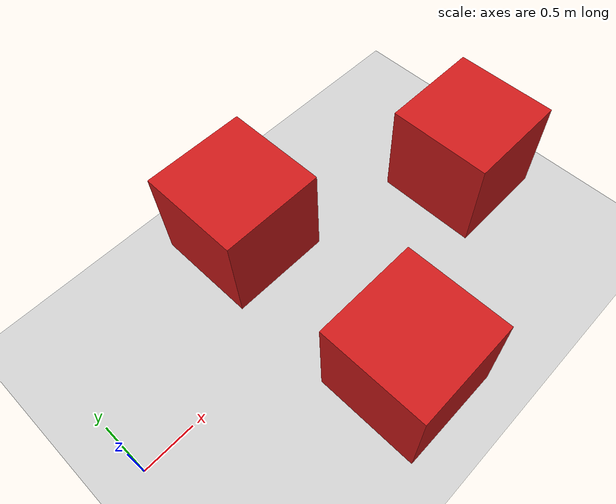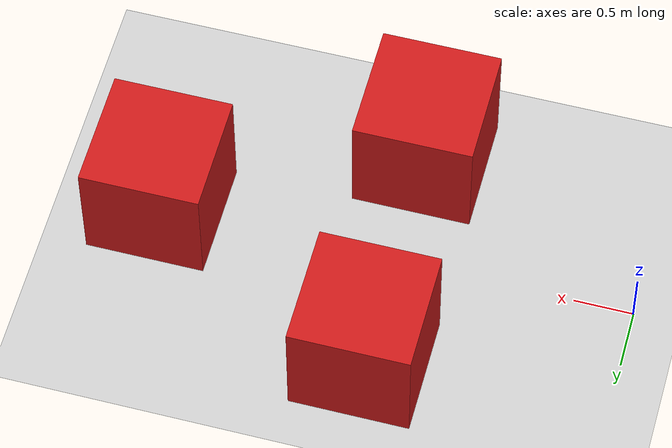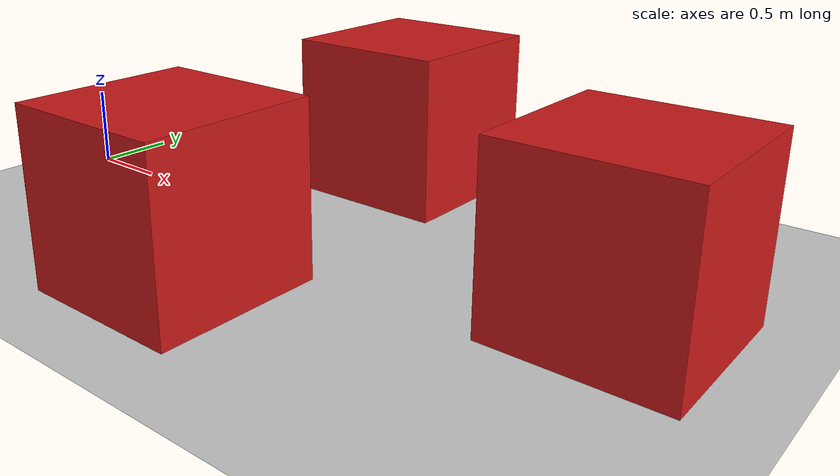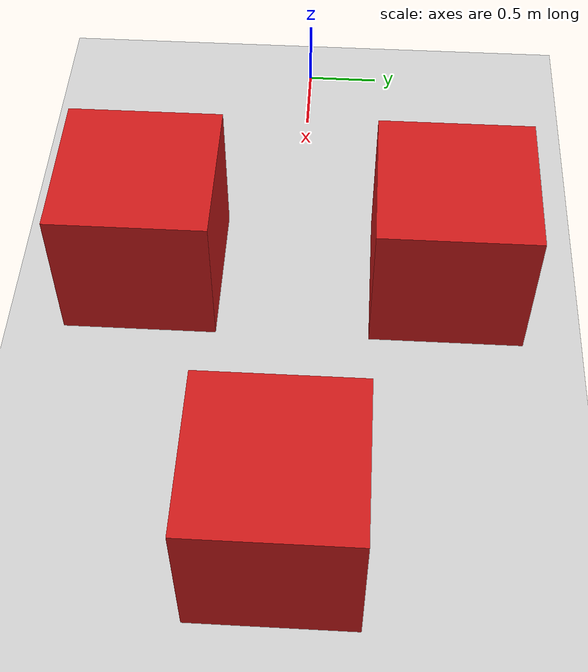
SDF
<?xml version="1.0"?>
<sdf version="1.6">
  <world name="grid_world">
    <include><uri>model://ground_plane</uri></include>
    <include><uri>model://sun</uri></include>

    <model name="obstacle_1">
      <static>true</static>
      <pose>2 1 0.5 0 0 0</pose>
      <link name="link">
        <collision name="col"><geometry><box><size>1 1 1</size></box></geometry></collision>
        <visual name="vis">
          <geometry><box><size>1 1 1</size></box></geometry>
          <material><ambient>0.8 0.1 0.1 1</ambient></material>
        </visual>
      </link>
    </model>

    <model name="obstacle_2">
      <static>true</static>
      <pose>2 -1 0.5 0 0 0</pose>
      <link name="link">
        <collision name="col"><geometry><box><size>1 1 1</size></box></geometry></collision>
        <visual name="vis">
          <geometry><box><size>1 1 1</size></box></geometry>
          <material><ambient>0.8 0.1 0.1 1</ambient></material>
        </visual>
      </link>
    </model>

    <model name="obstacle_3">
      <static>true</static>
      <pose>4 0 0.5 0 0 0</pose>
      <link name="link">
        <collision name="col"><geometry><box><size>1 1 1</size></box></geometry></collision>
        <visual name="vis">
          <geometry><box><size>1 1 1</size></box></geometry>
          <material><ambient>0.8 0.1 0.1 1</ambient></material>
        </visual>
      </link>
    </model>

  </world>
</sdf>
